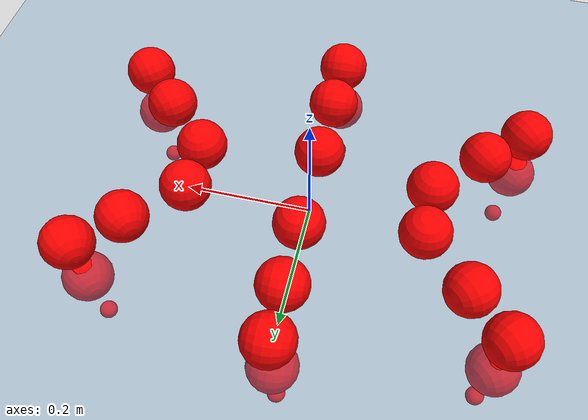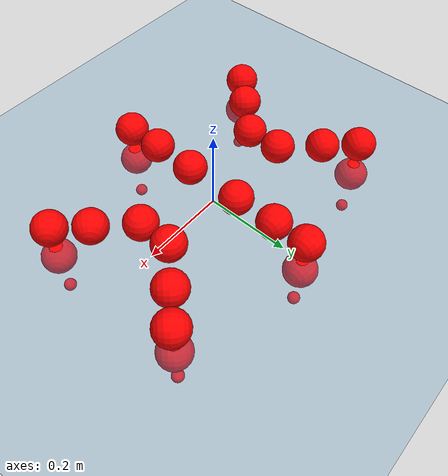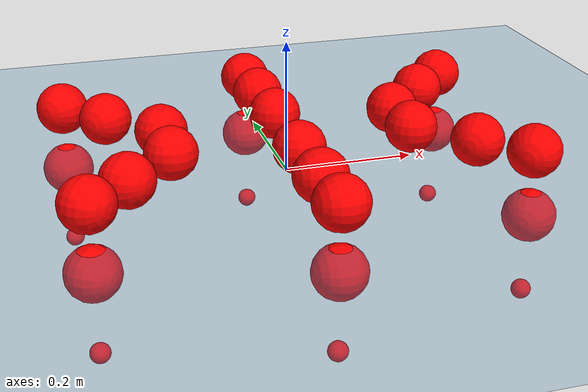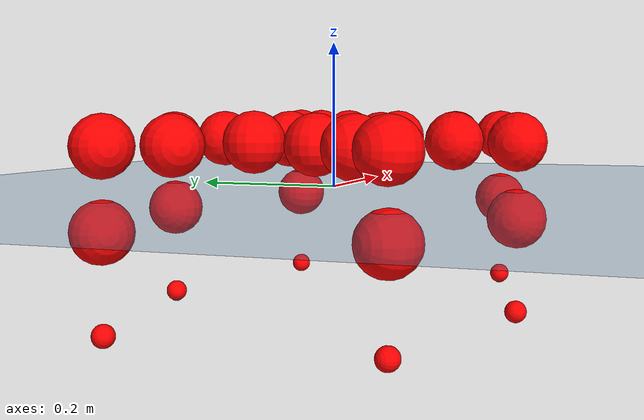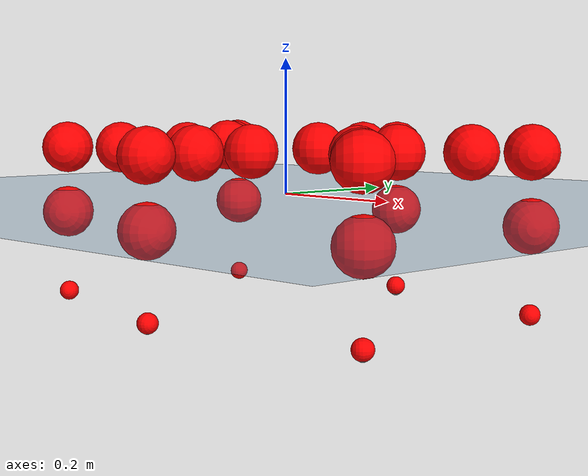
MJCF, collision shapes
<mujoco model="Golem">
  <compiler angle="radian" assetdir="assets" balanceinertia="true" inertiafromgeom="false"/>

  <option timestep="0.005" density="1.2" viscosity="2e-05"/>

  <size nkey="1"/>

  <visual>
    <quality shadowsize="8192"/>
    <map shadowclip="0.5"/>
  </visual>

  <default>
    <default class="/">
      <joint armature="0.01" damping="0.01" frictionloss="0.01"/>
      <geom contype="0" conaffinity="0" group="1" solref="-1000 -80"/>
      <site size="0.01 0.005 0.005" group="5"/>
      <general forcelimited="true" biastype="affine" gainprm="25" biasprm="0 -25 -0.5"/>
      <default class="visual">
        <geom type="mesh" group="2"/>
      </default>
      <default class="collision">
        <geom group="3"/>
      </default>
      <default class="foot">
        <geom size="0.01 0 0" condim="6" group="4" priority="1" solimp="0.015 1 0.01"/>
      </default>
      <default class="reward_collision_sphere">
        <geom group="5" rgba="1 0 0 1"/>
      </default>
    </default>
  </default>

  <asset>
    <texture type="skybox" colorspace="auto" name="//unnamed_texture_0" builtin="gradient" rgb1="0.95 0.95 0.95" rgb2="0.95 0.95 0.95" width="100" height="600"/>
    <texture type="2d" colorspace="auto" name="texplane" builtin="checker" rgb1="0.345 0.575 0.748" rgb2="0.345 0.575 0.748" markrgb="1 1 1" width="512" height="512"/>
    <material name="MatPlane" class="/" texture="texplane" texuniform="true" texrepeat="2 2" specular="0.9"/>
    <mesh name="body" class="/" file="body.stl" scale="0.001 0.001 0.001"/>
    <mesh name="coxa" class="/" file="coxa.stl" scale="0.001 0.001 0.001"/>
    <mesh name="femur" class="/" file="femur.stl" scale="0.001 0.001 0.001"/>
    <mesh name="tibia" class="/" file="tibia.stl" scale="0.001 0.001 0.001"/>
    <mesh name="tarsus" class="/" file="tarsus.stl" scale="0.001 0.001 0.001"/>
  </asset>

  <worldbody>
    <geom name="floor" class="/" size="100 100 0.125" type="plane" group="0" material="MatPlane"/>
    <light name="toplight_shadow" class="/" pos="0 0 5" dir="0.0990148 0.0990148 -0.990148" type="directional" ambient="0.04 0.04 0.04" diffuse="0.55 0.55 0.55" specular="0.12 0.12 0.12"/>
    <light name="toplight_fill" class="/" pos="0 0 5" dir="0.0990148 0.0990148 -0.990148" type="directional" castshadow="false" ambient="0.04 0.04 0.04" diffuse="0.3 0.3 0.3" specular="0.08 0.08 0.08"/>
    <body name="trunk" pos="0.00074051 -9.8678e-05 0.000918946" quat="1 0.000202431 -7.23158e-05 -0.000136351">
      <inertial pos="-0.000498124 -0.000251893 -0.00415275" quat="0.999995 -0.00171534 4.00867e-05 0.00253244" mass="3.6019" diaginertia="0.0212471 0.00287828 0.0110904"/>
      <joint name="//unnamed_joint_0" type="free"/>
      <geom name="//unnamed_geom_1" class="/" pos="0 0 0.0651663" quat="1 0 0 0" type="mesh" rgba="0.9 0.9 0.9 1" mesh="body"/>
      <site name="imu" class="/" pos="0.146722 0.00151801 0.106187" size="0.00986039"/>
      <camera name="track" class="/" pos="0 -1.55776 0" quat="0.707107 0.707107 0 0" mode="trackcom"/>
      <camera name="ego_camera" class="/" pos="0.150932 0 0.101822" quat="-0.5 -0.5 0.5 0.5"/>
      <body name="coxa_RR" pos="-0.206328 -0.0650484 0.0644271" quat="0.38253 0.000149159 -5.22684e-05 -0.923943">
        <inertial pos="5.69782e-05 0.000179932 0.000940601" quat="0.999991 -0.00153638 0.00395029 -2.73951e-05" mass="0.192892" diaginertia="0.0212496 0.00289488 0.0110273"/>
        <joint name="coxa_joint_RR" class="/" pos="0 0 0" axis="-0.00564314 -0.00305211 -0.999979" range="-3.1238 3.14946" armature="0.0102696" damping="0.00496953" frictionloss="0.0103184"/>
        <geom name="//unnamed_geom_2" class="/" type="mesh" rgba="0.2 0.2 0.2 1" mesh="coxa"/>
        <geom name="//unnamed_geom_3" class="reward_collision_sphere" size="0.0394416" pos="-0.0348304 0 0"/>
        <body name="femur_RR" pos="0.0688849 0.00163648 0.000289539" quat="0.499736 -0.499959 0.500216 0.500089">
          <inertial pos="0.000758327 0.000416614 0.00110866" quat="0.999997 -0.000615361 0.00011947 -0.00217549" mass="0.191698" diaginertia="0.0208749 0.00284393 0.0109737"/>
          <joint name="femur_joint_RR" class="/" pos="0 0 0" axis="0.000483137 0.000158009 -1" stiffness="0.000619945" range="-3.12927 3.13665" armature="0.00976246" damping="0" frictionloss="0.0104316"/>
          <geom name="//unnamed_geom_4" class="/" type="mesh" rgba="0.9 0.9 0.9 1" mesh="femur"/>
          <geom name="//unnamed_geom_5" class="reward_collision_sphere" size="0.0394416"/>
          <body name="tibia_RR" pos="-0.000508361 -0.083558 -0.000950468" quat="-1.43835e-05 1 -9.36111e-06 -8.53203e-06">
            <inertial pos="-0.000756681 -0.00125523 -0.00022623" quat="1 -0.000410165 -0.000627019 0.000246881" mass="0.18966" diaginertia="0.02102 0.00286085 0.010934"/>
            <joint name="tibia_joint_RR" class="/" pos="0 0 0" axis="-4.43855e-05 -0.00236634 0.999997" range="-3.13819 3.13665" armature="0.0100287" damping="0.00520172" frictionloss="0.0102857"/>
            <geom name="//unnamed_geom_6" class="/" type="mesh" rgba="0.2 0.2 0.2 1" mesh="tibia"/>
            <geom name="//unnamed_geom_7" class="reward_collision_sphere" size="0.0394416"/>
            <body name="tarsus_RR" pos="0.10093 0.000376217 -9.4791e-05" quat="1 7.52601e-05 -0.000122961 -4.65662e-05">
              <inertial pos="0.0708768 0.000993252 3.7474e-05" quat="0.502234 0.497409 0.49794 0.502395" mass="0.189953" diaginertia="0.0211507 0.00285357 0.0109852"/>
              <joint name="tarsus_joint_RR" class="/" pos="0 0 0" axis="0.00150598 0.000550772 0.999999" range="-3.16015 3.16315" armature="0.00979782" damping="0" frictionloss="0.0097537"/>
              <geom name="//unnamed_geom_8" class="/" type="mesh" rgba="0.9 0.9 0.9 1" mesh="tarsus"/>
              <geom name="foot_1" class="foot" size="0.00954171" pos="0.130034 0 0" quat="0 -0.707107 0 0.707107"/>
              <geom name="//unnamed_geom_10" class="reward_collision_sphere" size="0.0394416"/>
              <geom name="//unnamed_geom_11" class="reward_collision_sphere" size="0.0147906" pos="0.124809 0 0"/>
              <site name="foot_1" class="foot" pos="0.130034 0 0" quat="0 -0.707107 0 0.707107" size="0.00986039"/>
            </body>
          </body>
        </body>
      </body>
      <body name="coxa_RM" pos="-0.000967078 -0.103656 0.0640091" quat="0.707182 -0.000217938 -0.00034393 -0.707032">
        <inertial pos="7.04562e-05 0.00101144 -0.000360363" quat="0.99999 -0.00412134 -0.000719732 -0.00174955" mass="0.192518" diaginertia="0.021081 0.00286741 0.0109483"/>
        <joint name="coxa_joint_RM" class="/" pos="0 0 0" axis="0.00109679 -0.000442044 -0.999999" range="-3.14764 3.14782" armature="0.00993628" damping="0.00985311" frictionloss="0.00967647"/>
        <geom name="//unnamed_geom_12" class="/" type="mesh" rgba="0.2 0.2 0.2 1" mesh="coxa"/>
        <geom name="//unnamed_geom_13" class="reward_collision_sphere" size="0.0394416" pos="-0.0348304 0 0"/>
        <body name="femur_RM" pos="0.0683046 -0.000593862 0.000780426" quat="0.50011 -0.499848 0.500113 0.499929">
          <inertial pos="-0.000688533 0.000842758 -0.00116405" quat="0.999999 -0.000148145 0.00111986 -0.000553774" mass="0.191757" diaginertia="0.0209996 0.00286975 0.0108294"/>
          <joint name="femur_joint_RM" class="/" pos="0 0 0" axis="-0.0037426 0.0012163 -0.999992" range="-3.13524 3.1495" armature="0.00948771" damping="0.00425344" frictionloss="0.00972158"/>
          <geom name="//unnamed_geom_14" class="/" type="mesh" rgba="0.9 0.9 0.9 1" mesh="femur"/>
          <geom name="//unnamed_geom_15" class="reward_collision_sphere" size="0.0394416"/>
          <body name="tibia_RM" pos="0.000454124 -0.0849992 0.000606188" quat="-0.000134438 1 0.000317353 0.000247894">
            <inertial pos="0.000306276 0.000164572 -4.67954e-05" quat="1 5.4919e-06 2.22108e-05 7.47222e-06" mass="0.190138" diaginertia="0.0207551 0.00281301 0.0109169"/>
            <joint name="tibia_joint_RM" class="/" pos="0 0 0" axis="0.00186106 -0.000582946 0.999998" range="-3.1501 3.13633" armature="0.00956262" damping="0" frictionloss="0.00946292"/>
            <geom name="//unnamed_geom_16" class="/" type="mesh" rgba="0.2 0.2 0.2 1" mesh="tibia"/>
            <geom name="//unnamed_geom_17" class="reward_collision_sphere" size="0.0394416"/>
            <body name="tarsus_RM" pos="0.101636 -0.000127068 -5.37511e-05" quat="1 0.000126429 -0.000196733 -9.02606e-05">
              <inertial pos="0.0697752 0.00051241 -0.000520276" quat="0.498782 0.501479 0.500829 0.498905" mass="0.191208" diaginertia="0.0207808 0.00285653 0.0107637"/>
              <joint name="tarsus_joint_RM" class="/" pos="0 0 0" axis="0.000857607 0.000285761 1" stiffness="0.00116968" range="-3.14266 3.12237" armature="0.00986752" damping="0.00457533" frictionloss="0.00975399"/>
              <geom name="//unnamed_geom_18" class="/" type="mesh" rgba="0.9 0.9 0.9 1" mesh="tarsus"/>
              <geom name="foot_2" class="foot" size="0.00978232" pos="0.130034 0 0" quat="0 -0.707107 0 0.707107"/>
              <geom name="//unnamed_geom_20" class="reward_collision_sphere" size="0.0394416"/>
              <geom name="//unnamed_geom_21" class="reward_collision_sphere" size="0.0147906" pos="0.124809 0 0"/>
              <site name="foot_2" class="foot" pos="0.130034 0 0" quat="0 -0.707107 0 0.707107" size="0.00986039"/>
            </body>
          </body>
        </body>
      </body>
      <body name="coxa_RF" pos="0.206603 -0.0653509 0.0646767" quat="0.923781 -0.00055375 -0.00015042 -0.38292">
        <inertial pos="-0.000523776 -0.00143202 0.000781125" quat="1 -0.000168008 -0.000113444 -1.41588e-05" mass="0.189307" diaginertia="0.0209224 0.00285022 0.0108783"/>
        <joint name="coxa_joint_RF" class="/" pos="0 0 0" axis="0.000580742 -0.00117367 -0.999999" range="-3.13848 3.12439" armature="0.00976601" damping="0" frictionloss="0.00975603"/>
        <geom name="//unnamed_geom_22" class="/" type="mesh" rgba="0.2 0.2 0.2 1" mesh="coxa"/>
        <geom name="//unnamed_geom_23" class="reward_collision_sphere" size="0.0394416" pos="-0.0348304 0 0"/>
        <body name="femur_RF" pos="0.0694318 0.00110627 -0.000677343" quat="0.500003 -0.499997 0.499999 0.500002">
          <inertial pos="0.000679889 -5.14667e-05 -0.000186032" quat="1 0.000170733 -0.000290266 -6.54812e-05" mass="0.190741" diaginertia="0.0210664 0.00279395 0.0108603"/>
          <joint name="femur_joint_RF" class="/" pos="0 0 0" axis="-0.000465608 -0.000503124 -1" range="-3.12815 3.14536" armature="0.00986186" damping="0.0049338" frictionloss="0.0101263"/>
          <geom name="//unnamed_geom_24" class="/" type="mesh" rgba="0.9 0.9 0.9 1" mesh="femur"/>
          <geom name="//unnamed_geom_25" class="reward_collision_sphere" size="0.0394416"/>
          <body name="tibia_RF" pos="-0.00028767 -0.0852335 -0.000772512" quat="8.12472e-05 1 -9.46576e-05 4.12009e-05">
            <inertial pos="-0.000532637 0.000969436 -0.000162574" quat="0.99999 0.000198571 -0.00338556 0.00306528" mass="0.195685" diaginertia="0.0212498 0.00289658 0.0109636"/>
            <joint name="tibia_joint_RF" class="/" pos="0 0 0" axis="0.00392897 0.00211084 0.99999" range="-3.13824 3.13646" armature="0.0100742" damping="0.00322252" frictionloss="0.00988612"/>
            <geom name="//unnamed_geom_26" class="/" type="mesh" rgba="0.2 0.2 0.2 1" mesh="tibia"/>
            <geom name="//unnamed_geom_27" class="reward_collision_sphere" size="0.0394416"/>
            <body name="tarsus_RF" pos="0.102133 0.000979661 -0.00115566" quat="1 -0.000269995 -0.000340626 8.6822e-05">
              <inertial pos="0.0686557 -0.000283232 -0.000664798" quat="0.499209 0.500749 0.499958 0.500083" mass="0.190238" diaginertia="0.0211544 0.00288106 0.0108481"/>
              <joint name="tarsus_joint_RF" class="/" pos="0 0 0" axis="-0.000345865 0.000492646 1" stiffness="0.00140471" range="-3.13115 3.13809" armature="0.00984793" damping="0.00652902" frictionloss="0.00989"/>
              <geom name="//unnamed_geom_28" class="/" type="mesh" rgba="0.9 0.9 0.9 1" mesh="tarsus"/>
              <geom name="foot_3" class="foot" size="0.0101841" pos="0.130034 0 0" quat="0 -0.707107 0 0.707107"/>
              <geom name="//unnamed_geom_30" class="reward_collision_sphere" size="0.0394416"/>
              <geom name="//unnamed_geom_31" class="reward_collision_sphere" size="0.0147906" pos="0.124809 0 0"/>
              <site name="foot_3" class="foot" pos="0.130034 0 0" quat="0 -0.707107 0 0.707107" size="0.00986039"/>
            </body>
          </body>
        </body>
      </body>
      <body name="coxa_LR" pos="-0.206005 0.0665832 0.0664526" quat="0.382496 -0.000126535 0.000334954 0.923957">
        <inertial pos="-0.000271014 -0.000596052 0.00109987" quat="1 -0.000401072 -0.000270193 8.66581e-05" mass="0.190729" diaginertia="0.0209655 0.00285857 0.0108002"/>
        <joint name="coxa_joint_LR" class="/" pos="0 0 0" axis="-0.0017849 -0.00196371 -0.999996" range="-3.12198 3.13491" armature="0.0101922" damping="0.00466297" frictionloss="0.00951953"/>
        <geom name="//unnamed_geom_32" class="/" type="mesh" rgba="0.2 0.2 0.2 1" mesh="coxa"/>
        <geom name="//unnamed_geom_33" class="reward_collision_sphere" size="0.0394416" pos="-0.0348304 0 0"/>
        <body name="femur_LR" pos="0.0701464 -0.00185079 -0.00237092" quat="0.499854 -0.499969 0.50013 0.500047">
          <inertial pos="5.85543e-05 0.000608138 -0.000741847" quat="0.999998 0.00031303 0.00193278 -0.000680442" mass="0.18852" diaginertia="0.0211314 0.00285951 0.010901"/>
          <joint name="femur_joint_LR" class="/" pos="0 0 0" axis="0.00201358 0.000840499 0.999998" range="-3.16152 3.12917" armature="0.00956874" damping="0.00807618" frictionloss="0.00984848"/>
          <geom name="//unnamed_geom_34" class="/" type="mesh" rgba="0.9 0.9 0.9 1" mesh="femur"/>
          <geom name="//unnamed_geom_35" class="reward_collision_sphere" size="0.0394416"/>
          <body name="tibia_LR" pos="-0.000406837 -0.0857211 -0.00208502" quat="0.000143699 1 -0.000128819 -0.000361041">
            <inertial pos="-0.00110704 -0.000147226 -0.000359967" quat="1 -0.000112466 0.000151044 0.000259113" mass="0.191509" diaginertia="0.0212388 0.00287359 0.0110947"/>
            <joint name="tibia_joint_LR" class="/" pos="0 0 0" axis="-0.00349653 0.00285978 -0.99999" range="-3.12967 3.13962" armature="0.010036" damping="0.001299" frictionloss="0.00996007"/>
            <geom name="//unnamed_geom_36" class="/" type="mesh" rgba="0.2 0.2 0.2 1" mesh="tibia"/>
            <geom name="//unnamed_geom_37" class="reward_collision_sphere" size="0.0394416"/>
            <body name="tarsus_LR" pos="0.102522 0.000642961 0.00184361" quat="1 -3.93026e-05 3.22619e-05 0.000317665">
              <inertial pos="0.0700337 0.000665805 0.000356249" quat="0.500194 0.499915 0.49982 0.500071" mass="0.190737" diaginertia="0.0210321 0.00284693 0.0107944"/>
              <joint name="tarsus_joint_LR" class="/" pos="0 0 0" axis="0.000204696 0.000100011 -1" range="-3.13472 3.1345" armature="0.0095061" damping="0.0275595" frictionloss="0.00999232"/>
              <geom name="//unnamed_geom_38" class="/" type="mesh" rgba="0.9 0.9 0.9 1" mesh="tarsus"/>
              <geom name="foot_4" class="foot" size="0.00961903" pos="0.130034 0 0" quat="0.707107 0 -0.707107 0"/>
              <geom name="//unnamed_geom_40" class="reward_collision_sphere" size="0.0394416"/>
              <geom name="//unnamed_geom_41" class="reward_collision_sphere" size="0.0147906" pos="0.124809 0 0"/>
              <site name="foot_4" class="foot" pos="0.130034 0 0" quat="0.707107 0 -0.707107 0" size="0.00986039"/>
            </body>
          </body>
        </body>
      </body>
      <body name="coxa_LM" pos="-0.000328455 0.101477 0.0650901" quat="0.707087 -2.35888e-05 2.46765e-05 0.707126">
        <inertial pos="0.000530057 1.81367e-05 0.00031038" quat="0.999998 -0.000683273 0.00064373 -0.00182758" mass="0.191605" diaginertia="0.0213984 0.00286056 0.0109022"/>
        <joint name="coxa_joint_LM" class="/" pos="0 0 0" axis="0.00235549 0.00211782 -0.999995" range="-3.13241 3.13693" armature="0.00972137" damping="0" frictionloss="0.0103019"/>
        <geom name="//unnamed_geom_42" class="/" type="mesh" rgba="0.2 0.2 0.2 1" mesh="coxa"/>
        <geom name="//unnamed_geom_43" class="reward_collision_sphere" size="0.0394416" pos="-0.0348304 0 0"/>
        <body name="femur_LM" pos="0.066324 0.00128082 -0.000332135" quat="0.500005 -0.499984 0.499999 0.500012">
          <inertial pos="-0.000995569 -0.000232427 0.000958948" quat="0.999999 -0.000811699 -7.25352e-05 -0.000629758" mass="0.190978" diaginertia="0.0205634 0.00284163 0.0108567"/>
          <joint name="femur_joint_LM" class="/" pos="0 0 0" axis="0.00811108 0.00312676 0.999962" range="-3.12826 3.15688" armature="0.00982255" damping="0" frictionloss="0.00985753"/>
          <geom name="//unnamed_geom_44" class="/" type="mesh" rgba="0.9 0.9 0.9 1" mesh="femur"/>
          <geom name="//unnamed_geom_45" class="reward_collision_sphere" size="0.0394416"/>
          <body name="tibia_LM" pos="0.000753407 -0.0816404 0.00140348" quat="-1.20935e-06 1 2.39704e-06 -1.53956e-06">
            <inertial pos="-0.000644841 -0.000364203 -6.35651e-05" quat="0.999999 0.000391193 -0.000532415 0.000860488" mass="0.192416" diaginertia="0.0210809 0.00284825 0.0107922"/>
            <joint name="tibia_joint_LM" class="/" pos="0 0 0" axis="-0.000309458 -0.000976332 -0.999999" range="-3.13966 3.15599" armature="0.0101964" damping="0" frictionloss="0.00918651"/>
            <geom name="//unnamed_geom_46" class="/" type="mesh" rgba="0.2 0.2 0.2 1" mesh="tibia"/>
            <geom name="//unnamed_geom_47" class="reward_collision_sphere" size="0.0394416"/>
            <body name="tarsus_LM" pos="0.102463 -0.000954049 -0.000124693" quat="1 3.28847e-05 7.01354e-05 -0.000176134">
              <inertial pos="0.0698516 -4.38076e-05 0.000841457" quat="0.500057 0.5 0.500024 0.499919" mass="0.191942" diaginertia="0.0213781 0.00286605 0.0110939"/>
              <joint name="tarsus_joint_LM" class="/" pos="0 0 0" axis="0.000299555 -0.000180122 -1" range="-3.14871 3.13736" armature="0.00974952" damping="0" frictionloss="0.00990953"/>
              <geom name="//unnamed_geom_48" class="/" type="mesh" rgba="0.9 0.9 0.9 1" mesh="tarsus"/>
              <geom name="foot_5" class="foot" size="0.0104887" pos="0.130034 0 0" quat="0.707107 0 -0.707107 0"/>
              <geom name="//unnamed_geom_50" class="reward_collision_sphere" size="0.0394416"/>
              <geom name="//unnamed_geom_51" class="reward_collision_sphere" size="0.0147906" pos="0.124809 0 0"/>
              <site name="foot_5" class="foot" pos="0.130034 0 0" quat="0.707107 0 -0.707107 0" size="0.00986039"/>
            </body>
          </body>
        </body>
      </body>
      <body name="coxa_LF" pos="0.206606 0.0645994 0.0651333" quat="0.92384 8.24107e-05 4.9765e-05 0.382778">
        <inertial pos="-4.36732e-06 -0.000932899 5.79881e-05" quat="0.999999 0.00106472 0.000738364 -0.000156484" mass="0.194698" diaginertia="0.0214999 0.00289581 0.0110448"/>
        <joint name="coxa_joint_LF" class="/" pos="0 0 0" axis="-0.00591456 0.00592619 -0.999965" range="-3.15004 3.13608" armature="0.00939335" damping="0" frictionloss="0.00992073"/>
        <geom name="//unnamed_geom_52" class="/" type="mesh" rgba="0.2 0.2 0.2 1" mesh="coxa"/>
        <geom name="//unnamed_geom_53" class="reward_collision_sphere" size="0.0394416" pos="-0.0348304 0 0"/>
        <body name="femur_LF" pos="0.0683273 0.000930084 0.000100725" quat="0.499972 -0.499817 0.500001 0.500209">
          <inertial pos="0.000217008 -0.000891474 -0.000212645" quat="0.999999 0.0012804 -0.000495604 0.00021016" mass="0.189328" diaginertia="0.0207532 0.00283785 0.0108804"/>
          <joint name="femur_joint_LF" class="/" pos="0 0 0" axis="0.00189681 -0.0018181 0.999997" range="-3.14766 3.13891" armature="0.00947789" damping="0" frictionloss="0.00996641"/>
          <geom name="//unnamed_geom_54" class="/" type="mesh" rgba="0.9 0.9 0.9 1" mesh="femur"/>
          <geom name="//unnamed_geom_55" class="reward_collision_sphere" size="0.0394416"/>
          <body name="tibia_LF" pos="-0.00015759 -0.0837229 -8.66473e-05" quat="2.62726e-05 1 -5.44446e-06 2.27584e-05">
            <inertial pos="0.000641045 0.000791735 0.00121251" quat="0.999999 -0.00147867 -0.000210732 0.000164847" mass="0.191126" diaginertia="0.0209848 0.00282712 0.0110679"/>
            <joint name="tibia_joint_LF" class="/" pos="0 0 0" axis="0.00475171 -0.00552518 -0.999973" range="-3.1542 3.12695" armature="0.00964361" damping="0.00406352" frictionloss="0.0102742"/>
            <geom name="//unnamed_geom_56" class="/" type="mesh" rgba="0.2 0.2 0.2 1" mesh="tibia"/>
            <geom name="//unnamed_geom_57" class="reward_collision_sphere" size="0.0394416"/>
            <body name="tarsus_LF" pos="0.103129 -0.000250712 -0.000243846" quat="1 -4.42379e-05 -2.28741e-05 8.82345e-05">
              <inertial pos="0.070833 -2.8148e-05 0.000566529" quat="0.499813 0.499771 0.500616 0.499799" mass="0.191103" diaginertia="0.0210972 0.00285617 0.0110696"/>
              <joint name="tarsus_joint_LF" class="/" pos="0 0 0" axis="-0.000155121 -0.000130418 -1" range="-3.13871 3.12307" armature="0.00935482" damping="0.0113955" frictionloss="0.00940172"/>
              <geom name="//unnamed_geom_58" class="/" type="mesh" rgba="0.9 0.9 0.9 1" mesh="tarsus"/>
              <geom name="foot_6" class="foot" size="0.00959239" pos="0.130034 0 0" quat="0.707107 0 -0.707107 0"/>
              <geom name="//unnamed_geom_60" class="reward_collision_sphere" size="0.0394416"/>
              <geom name="//unnamed_geom_61" class="reward_collision_sphere" size="0.0147906" pos="0.124809 0 0"/>
              <site name="foot_6" class="foot" pos="0.130034 0 0" quat="0.707107 0 -0.707107 0" size="0.00986039"/>
            </body>
          </body>
        </body>
      </body>
    </body>
  </worldbody>

  <contact>
    <pair class="/" geom1="floor" geom2="foot_1" name="//unnamed_contact_0"/>
    <pair class="/" geom1="floor" geom2="foot_2" name="//unnamed_contact_1"/>
    <pair class="/" geom1="floor" geom2="foot_3" name="//unnamed_contact_2"/>
    <pair class="/" geom1="floor" geom2="foot_4" name="//unnamed_contact_3"/>
    <pair class="/" geom1="floor" geom2="foot_5" name="//unnamed_contact_4"/>
    <pair class="/" geom1="floor" geom2="foot_6" name="//unnamed_contact_5"/>
  </contact>

  <actuator>
    <general name="coxa_joint_RR" class="/" joint="coxa_joint_RR" forcerange="-7.10548 7.10548" gainprm="23.9288" biasprm="0 -23.9288 -0.505957"/>
    <general name="femur_joint_RR" class="/" joint="femur_joint_RR" forcerange="-7.23425 7.23425" gainprm="23.9288" biasprm="0 -23.9288 -0.505957"/>
    <general name="tibia_joint_RR" class="/" joint="tibia_joint_RR" forcerange="-7.17668 7.17668" gainprm="23.9288" biasprm="0 -23.9288 -0.505957"/>
    <general name="tarsus_joint_RR" class="/" joint="tarsus_joint_RR" forcerange="-7.20046 7.20046" gainprm="23.9288" biasprm="0 -23.9288 -0.505957"/>
    <general name="coxa_joint_RM" class="/" joint="coxa_joint_RM" forcerange="-7.21477 7.21477" gainprm="23.9288" biasprm="0 -23.9288 -0.505957"/>
    <general name="femur_joint_RM" class="/" joint="femur_joint_RM" forcerange="-7.23215 7.23215" gainprm="23.9288" biasprm="0 -23.9288 -0.505957"/>
    <general name="tibia_joint_RM" class="/" joint="tibia_joint_RM" forcerange="-7.19651 7.19651" gainprm="23.9288" biasprm="0 -23.9288 -0.505957"/>
    <general name="tarsus_joint_RM" class="/" joint="tarsus_joint_RM" forcerange="-7.32646 7.32646" gainprm="23.9288" biasprm="0 -23.9288 -0.505957"/>
    <general name="coxa_joint_RF" class="/" joint="coxa_joint_RF" forcerange="-7.23459 7.23459" gainprm="23.9288" biasprm="0 -23.9288 -0.505957"/>
    <general name="femur_joint_RF" class="/" joint="femur_joint_RF" forcerange="-7.20834 7.20834" gainprm="23.9288" biasprm="0 -23.9288 -0.505957"/>
    <general name="tibia_joint_RF" class="/" joint="tibia_joint_RF" forcerange="-7.20883 7.20883" gainprm="23.9288" biasprm="0 -23.9288 -0.505957"/>
    <general name="tarsus_joint_RF" class="/" joint="tarsus_joint_RF" forcerange="-7.13543 7.13543" gainprm="23.9288" biasprm="0 -23.9288 -0.505957"/>
    <general name="coxa_joint_LR" class="/" joint="coxa_joint_LR" forcerange="-7.29468 7.29468" gainprm="23.9288" biasprm="0 -23.9288 -0.505957"/>
    <general name="femur_joint_LR" class="/" joint="femur_joint_LR" forcerange="-7.19339 7.19339" gainprm="23.9288" biasprm="0 -23.9288 -0.505957"/>
    <general name="tibia_joint_LR" class="/" joint="tibia_joint_LR" forcerange="-7.33456 7.33456" gainprm="23.9288" biasprm="0 -23.9288 -0.505957"/>
    <general name="tarsus_joint_LR" class="/" joint="tarsus_joint_LR" forcerange="-7.182 7.182" gainprm="23.9288" biasprm="0 -23.9288 -0.505957"/>
    <general name="coxa_joint_LM" class="/" joint="coxa_joint_LM" forcerange="-7.20094 7.20094" gainprm="23.9288" biasprm="0 -23.9288 -0.505957"/>
    <general name="femur_joint_LM" class="/" joint="femur_joint_LM" forcerange="-7.43412 7.43412" gainprm="23.9288" biasprm="0 -23.9288 -0.505957"/>
    <general name="tibia_joint_LM" class="/" joint="tibia_joint_LM" forcerange="-7.18931 7.18931" gainprm="23.9288" biasprm="0 -23.9288 -0.505957"/>
    <general name="tarsus_joint_LM" class="/" joint="tarsus_joint_LM" forcerange="-6.95094 6.95094" gainprm="23.9288" biasprm="0 -23.9288 -0.505957"/>
    <general name="coxa_joint_LF" class="/" joint="coxa_joint_LF" forcerange="-7.23738 7.23738" gainprm="23.9288" biasprm="0 -23.9288 -0.505957"/>
    <general name="femur_joint_LF" class="/" joint="femur_joint_LF" forcerange="-7.03971 7.03971" gainprm="23.9288" biasprm="0 -23.9288 -0.505957"/>
    <general name="tibia_joint_LF" class="/" joint="tibia_joint_LF" forcerange="-7.17988 7.17988" gainprm="23.9288" biasprm="0 -23.9288 -0.505957"/>
    <general name="tarsus_joint_LF" class="/" joint="tarsus_joint_LF" forcerange="-6.83953 6.83953" gainprm="23.9288" biasprm="0 -23.9288 -0.505957"/>
  </actuator>

  <sensor>
    <gyro site="imu" name="imu_angular_velocity"/>
    <velocimeter site="imu" name="imu_linear_velocity"/>
    <framelinvel objtype="site" objname="foot_1" name="foot_1_global_linear_velocity"/>
    <framelinvel objtype="site" objname="foot_2" name="foot_2_global_linear_velocity"/>
    <framelinvel objtype="site" objname="foot_3" name="foot_3_global_linear_velocity"/>
    <framelinvel objtype="site" objname="foot_4" name="foot_4_global_linear_velocity"/>
    <framelinvel objtype="site" objname="foot_5" name="foot_5_global_linear_velocity"/>
    <framelinvel objtype="site" objname="foot_6" name="foot_6_global_linear_velocity"/>
  </sensor>

  <keyframe>
    <key name="home" qpos="0 0 0.1457 1 0 0 0 0 0 0 0 0 0 0 0 0 0 0 0 0 0 0 0 0 0 0 0 0 0 0 0"/>
  </keyframe>
</mujoco>
